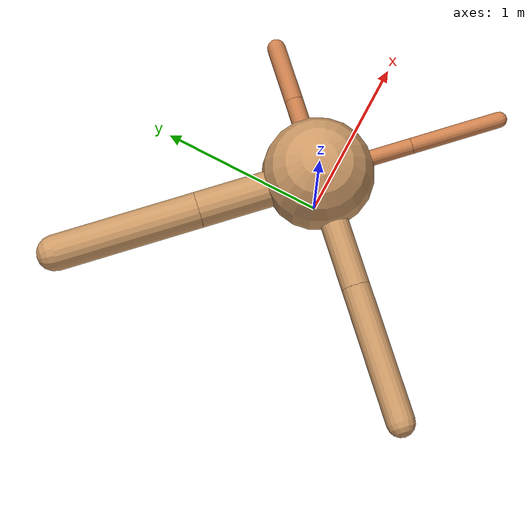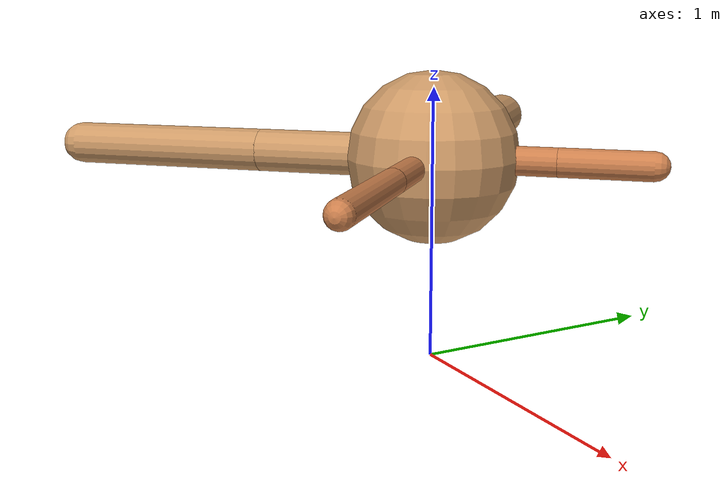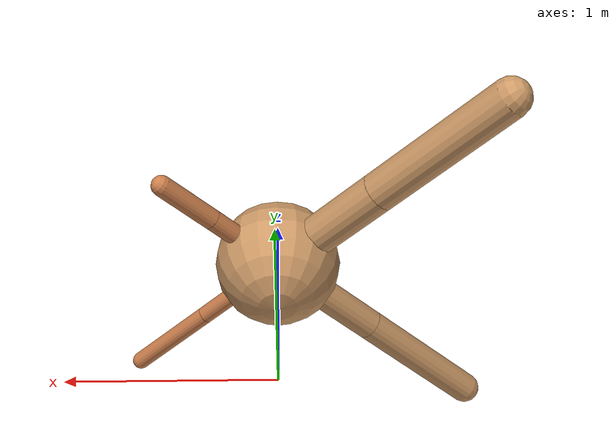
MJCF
<?xml version="1.0" ?>
<mujoco model="ant">

	<compiler angle="degree" coordinate="local" inertiafromgeom="true"/>

	<option integrator="RK4" timestep="0.01"/>

	<custom>

		<numeric data="0.0 0.0 0.55 1.0 0.0 0.0 0.0 0.0 1.0 0.0 -1.0 0.0 -1.0 0.0 1.0" name="init_qpos"/>

	</custom>

	<default>

		<joint armature="1" damping="1" limited="true"/>

		<geom conaffinity="0" condim="3" density="5.0" friction="1.5 0.1 0.1" margin="0.01" rgba="0.8 0.6 0.4 1"/>

	</default>

	<worldbody>

		<body name="torso" pos="0 0 0.75">

			<geom name="torso_geom" pos="0 0 0" size="0.312639160671875" type="sphere"/>

			<!--joint armature="0" damping="0" limited="false" margin="0.01" name="root" pos="0 0 0" type="free"/-->

			<body name="front_left_leg" pos="0 0 0">

				<geom fromto="0 0 0 0.2 0.2 0" name="aux_1_geom" size="0.052199330537343" type="capsule" rgba=".8 .5 .3 1"/>

				<body name="aux_1" pos="0.2 0.2 0">

					<joint axis="0 0 1" name="hip_1" pos="0.0 0.0 0.0" range="-40 40" type="hinge"/>

					<geom fromto="0 0 0 0.11543430356853038 0.11543430356853038 0" name="left_leg_geom" size="0.052199330537343" type="capsule" rgba=".8 .5 .3 1"/>

					<body pos="0.11543430356853038 0.11543430356853038 0" name="front_left_foot">

						<joint axis="-1 1 0" name="ankle_1" pos="0.0 0.0 0.0" range="30 100" type="hinge"/>

						<geom fromto="0 0 0 0.23086860713706076 0.23086860713706076 0" name="left_ankle_geom" size="0.052199330537343" type="capsule" rgba=".8 .5 .3 1"/>

					</body>

				</body>

			</body>

			<body name="front_right_leg" pos="0 0 0">

				<geom fromto="0 0 0 -0.2 0.2 0" name="aux_2_geom" size="0.10121579921961417" type="capsule"/>

				<body name="aux_2" pos="-0.2 0.2 0">

					<joint axis="0 0 1" name="hip_2" pos="0.0 0.0 0.0" range="-40 40" type="hinge"/>

					<geom fromto="0 0 0 -0.2878739255923554 0.2878739255923554 0" name="right_leg_geom" size="0.10121579921961417" type="capsule"/>

					<body pos="-0.2878739255923554 0.2878739255923554 0" name="front_right_foot">

						<joint axis="1 1 0" name="ankle_2" pos="0.0 0.0 0.0" range="-100 -30" type="hinge"/>

						<geom fromto="0 0 0 -0.5757478511847108 0.5757478511847108 0" name="right_ankle_geom" size="0.10121579921961417" type="capsule"/>

					</body>

				</body>

			</body>

			<body name="left_back_leg" pos="0 0 0">

				<geom fromto="0 0 0 -0.2 -0.2 0" name="aux_3_geom" size="0.07916037195116413" type="capsule"/>

				<body name="aux_3" pos="-0.2 -0.2 0">

					<joint axis="0 0 1" name="hip_3" pos="0.0 0.0 0.0" range="-40 40" type="hinge"/>

					<geom fromto="0 0 0 -0.27075078620445214 -0.27075078620445214 0" name="back_leg_geom" size="0.07916037195116413" type="capsule"/>

					<body pos="-0.27075078620445214 -0.27075078620445214 0" name="left_back_foot">

						<joint axis="-1 1 0" name="ankle_3" pos="0.0 0.0 0.0" range="-100 -30" type="hinge"/>

						<geom fromto="0 0 0 -0.5415015724089043 -0.5415015724089043 0" name="third_ankle_geom" size="0.07916037195116413" type="capsule"/>

					</body>

				</body>

			</body>

			<body name="right_back_leg" pos="0 0 0">

				<geom fromto="0 0 0 0.2 -0.2 0" name="aux_4_geom" size="0.04479573865030678" type="capsule" rgba=".8 .5 .3 1"/>

				<body name="aux_4" pos="0.2 -0.2 0">

					<joint axis="0 0 1" name="hip_4" pos="0.0 0.0 0.0" range="-40 40" type="hinge"/>

					<geom fromto="0 0 0 0.18291789986189674 -0.18291789986189674 0" name="rightback_leg_geom" size="0.04479573865030678" type="capsule" rgba=".8 .5 .3 1"/>

					<body pos="0.18291789986189674 -0.18291789986189674 0" name="right_back_foot">

						<joint axis="1 1 0" name="ankle_4" pos="0.0 0.0 0.0" range="30 100" type="hinge"/>

						<geom fromto="0 0 0 0.3658357997237935 -0.3658357997237935 0" name="fourth_ankle_geom" size="0.04479573865030678" type="capsule" rgba=".8 .5 .3 1"/>

					</body>

				</body>

			</body>

		</body>

	</worldbody>

	<actuator>

		<motor ctrllimited="true" ctrlrange="-1.0 1.0" joint="hip_4" gear="150"/>

		<motor ctrllimited="true" ctrlrange="-1.0 1.0" joint="ankle_4" gear="150"/>

		<motor ctrllimited="true" ctrlrange="-1.0 1.0" joint="hip_1" gear="150"/>

		<motor ctrllimited="true" ctrlrange="-1.0 1.0" joint="ankle_1" gear="150"/>

		<motor ctrllimited="true" ctrlrange="-1.0 1.0" joint="hip_2" gear="150"/>

		<motor ctrllimited="true" ctrlrange="-1.0 1.0" joint="ankle_2" gear="150"/>

		<motor ctrllimited="true" ctrlrange="-1.0 1.0" joint="hip_3" gear="150"/>

		<motor ctrllimited="true" ctrlrange="-1.0 1.0" joint="ankle_3" gear="150"/>

	</actuator>

</mujoco>
